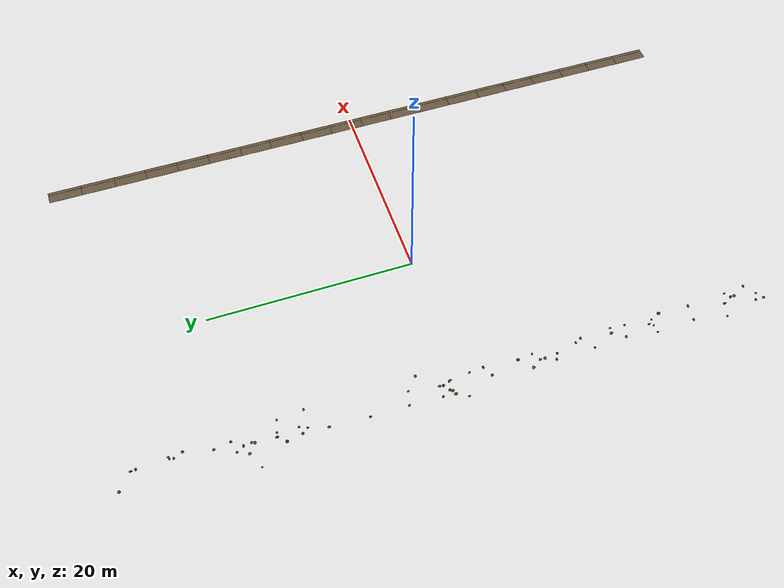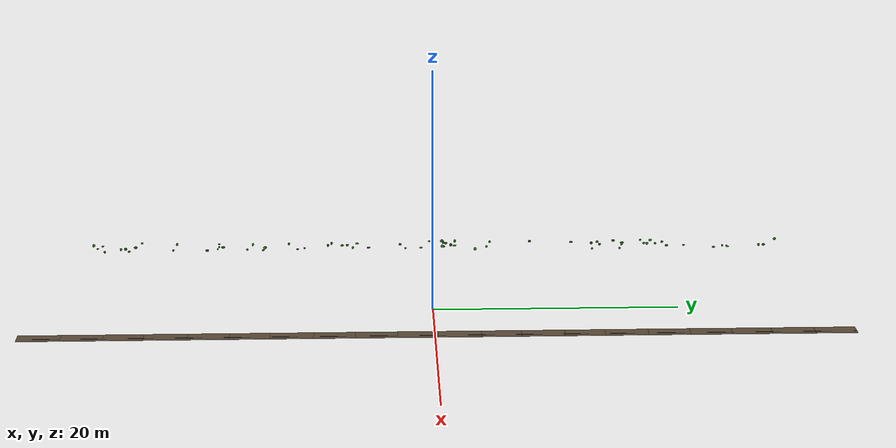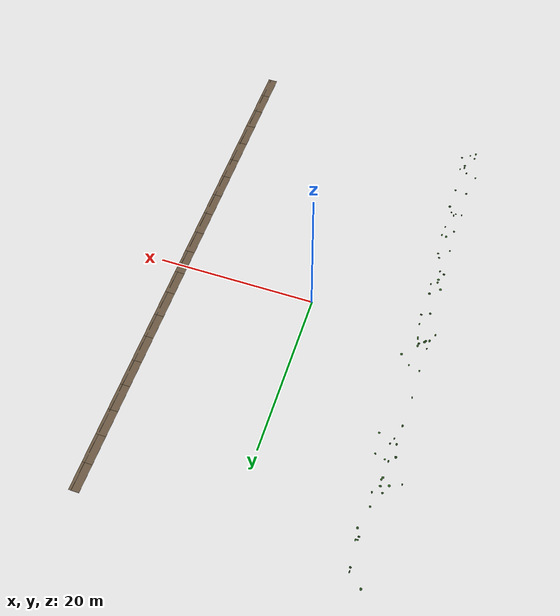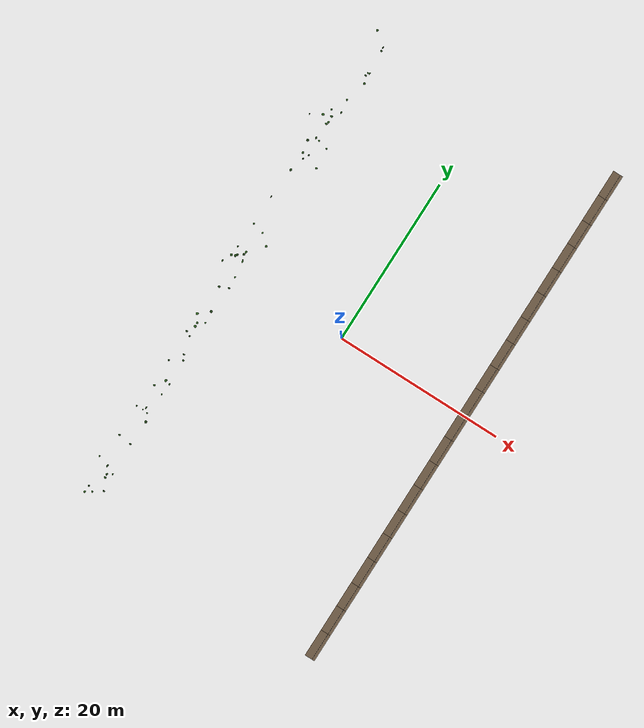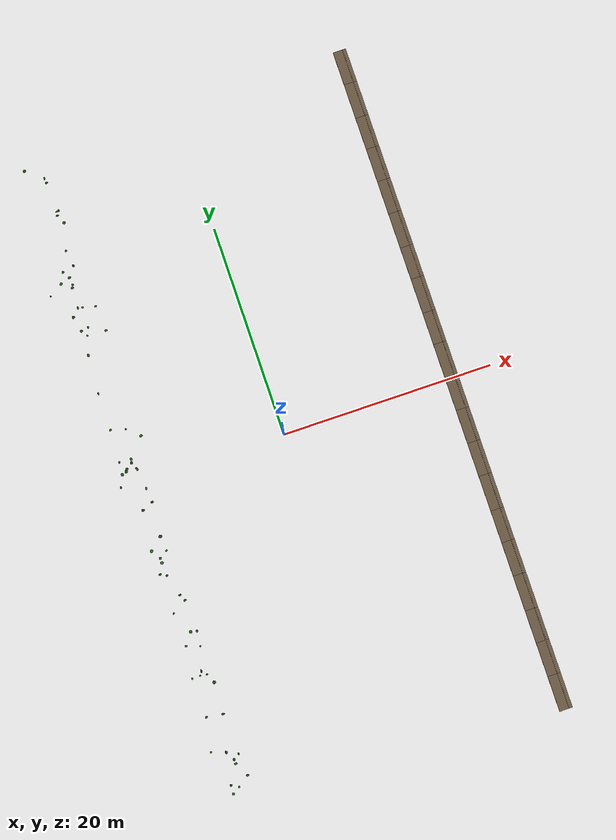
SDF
<sdf version="1.9">
 <world name="orchard_10x41">
  <model name="understory_r9">
   <static>true</static>
   <link name="link">
    <visual name="soil_1">
     <pose>15.750 -29.450 3.890 0.0001 0.0000 0.0000</pose>
     <geometry><box><size>1.2000 3.2240 0.0300</size></box></geometry>
     <material>
      <ambient>0.400 0.330 0.250 1</ambient>
      <diffuse>0.440 0.363 0.275 1</diffuse>
      <specular>0.120 0.099 0.075 1</specular>
     </material>
     <plugin filename="gz-sim-label-system" name="gz::sim::systems::Label"><label>66</label></plugin>
    </visual>
    <visual name="soil_2">
     <pose>15.750 -26.350 3.890 0.0004 0.0000 0.0000</pose>
     <geometry><box><size>1.2000 3.2240 0.0300</size></box></geometry>
     <material>
      <ambient>0.400 0.330 0.250 1</ambient>
      <diffuse>0.440 0.363 0.275 1</diffuse>
      <specular>0.120 0.099 0.075 1</specular>
     </material>
     <plugin filename="gz-sim-label-system" name="gz::sim::systems::Label"><label>66</label></plugin>
    </visual>
    <visual name="soil_3">
     <pose>15.750 -23.250 3.891 0.0003 0.0000 0.0000</pose>
     <geometry><box><size>1.2000 3.2240 0.0300</size></box></geometry>
     <material>
      <ambient>0.400 0.330 0.250 1</ambient>
      <diffuse>0.440 0.363 0.275 1</diffuse>
      <specular>0.120 0.099 0.075 1</specular>
     </material>
     <plugin filename="gz-sim-label-system" name="gz::sim::systems::Label"><label>66</label></plugin>
    </visual>
    <visual name="soil_4">
     <pose>15.750 -20.150 3.892 0.0001 0.0000 0.0000</pose>
     <geometry><box><size>1.2000 3.2240 0.0300</size></box></geometry>
     <material>
      <ambient>0.400 0.330 0.250 1</ambient>
      <diffuse>0.440 0.363 0.275 1</diffuse>
      <specular>0.120 0.099 0.075 1</specular>
     </material>
     <plugin filename="gz-sim-label-system" name="gz::sim::systems::Label"><label>66</label></plugin>
    </visual>
    <visual name="soil_5">
     <pose>15.750 -17.050 3.892 -0.0000 0.0000 0.0000</pose>
     <geometry><box><size>1.2000 3.2240 0.0300</size></box></geometry>
     <material>
      <ambient>0.400 0.330 0.250 1</ambient>
      <diffuse>0.440 0.363 0.275 1</diffuse>
      <specular>0.120 0.099 0.075 1</specular>
     </material>
     <plugin filename="gz-sim-label-system" name="gz::sim::systems::Label"><label>66</label></plugin>
    </visual>
    <visual name="soil_6">
     <pose>15.750 -13.950 3.892 0.0001 0.0000 0.0000</pose>
     <geometry><box><size>1.2000 3.2240 0.0300</size></box></geometry>
     <material>
      <ambient>0.400 0.330 0.250 1</ambient>
      <diffuse>0.440 0.363 0.275 1</diffuse>
      <specular>0.120 0.099 0.075 1</specular>
     </material>
     <plugin filename="gz-sim-label-system" name="gz::sim::systems::Label"><label>66</label></plugin>
    </visual>
    <visual name="soil_7">
     <pose>15.750 -10.850 3.893 0.0001 0.0000 0.0000</pose>
     <geometry><box><size>1.2000 3.2240 0.0300</size></box></geometry>
     <material>
      <ambient>0.400 0.330 0.250 1</ambient>
      <diffuse>0.440 0.363 0.275 1</diffuse>
      <specular>0.120 0.099 0.075 1</specular>
     </material>
     <plugin filename="gz-sim-label-system" name="gz::sim::systems::Label"><label>66</label></plugin>
    </visual>
    <visual name="soil_8">
     <pose>15.750 -7.750 3.893 -0.0000 0.0000 0.0000</pose>
     <geometry><box><size>1.2000 3.2240 0.0300</size></box></geometry>
     <material>
      <ambient>0.400 0.330 0.250 1</ambient>
      <diffuse>0.440 0.363 0.275 1</diffuse>
      <specular>0.120 0.099 0.075 1</specular>
     </material>
     <plugin filename="gz-sim-label-system" name="gz::sim::systems::Label"><label>66</label></plugin>
    </visual>
    <visual name="soil_9">
     <pose>15.750 -4.650 3.892 -0.0003 0.0000 0.0000</pose>
     <geometry><box><size>1.2000 3.2240 0.0300</size></box></geometry>
     <material>
      <ambient>0.400 0.330 0.250 1</ambient>
      <diffuse>0.440 0.363 0.275 1</diffuse>
      <specular>0.120 0.099 0.075 1</specular>
     </material>
     <plugin filename="gz-sim-label-system" name="gz::sim::systems::Label"><label>66</label></plugin>
    </visual>
    <visual name="soil_10">
     <pose>15.750 -1.550 3.891 -0.0003 0.0000 0.0000</pose>
     <geometry><box><size>1.2000 3.2240 0.0300</size></box></geometry>
     <material>
      <ambient>0.400 0.330 0.250 1</ambient>
      <diffuse>0.440 0.363 0.275 1</diffuse>
      <specular>0.120 0.099 0.075 1</specular>
     </material>
     <plugin filename="gz-sim-label-system" name="gz::sim::systems::Label"><label>66</label></plugin>
    </visual>
    <visual name="soil_11">
     <pose>15.750 1.550 3.891 0.0000 0.0000 0.0000</pose>
     <geometry><box><size>1.2000 3.2240 0.0300</size></box></geometry>
     <material>
      <ambient>0.400 0.330 0.250 1</ambient>
      <diffuse>0.440 0.363 0.275 1</diffuse>
      <specular>0.120 0.099 0.075 1</specular>
     </material>
     <plugin filename="gz-sim-label-system" name="gz::sim::systems::Label"><label>66</label></plugin>
    </visual>
    <visual name="soil_12">
     <pose>15.750 4.650 3.891 0.0002 0.0000 0.0000</pose>
     <geometry><box><size>1.2000 3.2240 0.0300</size></box></geometry>
     <material>
      <ambient>0.400 0.330 0.250 1</ambient>
      <diffuse>0.440 0.363 0.275 1</diffuse>
      <specular>0.120 0.099 0.075 1</specular>
     </material>
     <plugin filename="gz-sim-label-system" name="gz::sim::systems::Label"><label>66</label></plugin>
    </visual>
    <visual name="soil_13">
     <pose>15.750 7.750 3.892 0.0003 0.0000 0.0000</pose>
     <geometry><box><size>1.2000 3.2240 0.0300</size></box></geometry>
     <material>
      <ambient>0.400 0.330 0.250 1</ambient>
      <diffuse>0.440 0.363 0.275 1</diffuse>
      <specular>0.120 0.099 0.075 1</specular>
     </material>
     <plugin filename="gz-sim-label-system" name="gz::sim::systems::Label"><label>66</label></plugin>
    </visual>
    <visual name="soil_14">
     <pose>15.750 10.850 3.893 0.0006 0.0000 0.0000</pose>
     <geometry><box><size>1.2000 3.2240 0.0300</size></box></geometry>
     <material>
      <ambient>0.400 0.330 0.250 1</ambient>
      <diffuse>0.440 0.363 0.275 1</diffuse>
      <specular>0.120 0.099 0.075 1</specular>
     </material>
     <plugin filename="gz-sim-label-system" name="gz::sim::systems::Label"><label>66</label></plugin>
    </visual>
    <visual name="soil_15">
     <pose>15.750 13.950 3.895 0.0006 0.0000 0.0000</pose>
     <geometry><box><size>1.2000 3.2240 0.0300</size></box></geometry>
     <material>
      <ambient>0.400 0.330 0.250 1</ambient>
      <diffuse>0.440 0.363 0.275 1</diffuse>
      <specular>0.120 0.099 0.075 1</specular>
     </material>
     <plugin filename="gz-sim-label-system" name="gz::sim::systems::Label"><label>66</label></plugin>
    </visual>
    <visual name="soil_16">
     <pose>15.750 17.050 3.895 -0.0005 0.0000 0.0000</pose>
     <geometry><box><size>1.2000 3.2240 0.0300</size></box></geometry>
     <material>
      <ambient>0.400 0.330 0.250 1</ambient>
      <diffuse>0.440 0.363 0.275 1</diffuse>
      <specular>0.120 0.099 0.075 1</specular>
     </material>
     <plugin filename="gz-sim-label-system" name="gz::sim::systems::Label"><label>66</label></plugin>
    </visual>
    <visual name="soil_17">
     <pose>15.750 20.150 3.894 -0.0001 0.0000 0.0000</pose>
     <geometry><box><size>1.2000 3.2240 0.0300</size></box></geometry>
     <material>
      <ambient>0.400 0.330 0.250 1</ambient>
      <diffuse>0.440 0.363 0.275 1</diffuse>
      <specular>0.120 0.099 0.075 1</specular>
     </material>
     <plugin filename="gz-sim-label-system" name="gz::sim::systems::Label"><label>66</label></plugin>
    </visual>
    <visual name="soil_18">
     <pose>15.750 23.250 3.894 0.0002 0.0000 0.0000</pose>
     <geometry><box><size>1.2000 3.2240 0.0300</size></box></geometry>
     <material>
      <ambient>0.400 0.330 0.250 1</ambient>
      <diffuse>0.440 0.363 0.275 1</diffuse>
      <specular>0.120 0.099 0.075 1</specular>
     </material>
     <plugin filename="gz-sim-label-system" name="gz::sim::systems::Label"><label>66</label></plugin>
    </visual>
    <visual name="soil_19">
     <pose>15.750 26.350 3.895 -0.0000 0.0000 0.0000</pose>
     <geometry><box><size>1.2000 3.2240 0.0300</size></box></geometry>
     <material>
      <ambient>0.400 0.330 0.250 1</ambient>
      <diffuse>0.440 0.363 0.275 1</diffuse>
      <specular>0.120 0.099 0.075 1</specular>
     </material>
     <plugin filename="gz-sim-label-system" name="gz::sim::systems::Label"><label>66</label></plugin>
    </visual>
    <visual name="soil_20">
     <pose>15.750 29.450 3.894 -0.0005 0.0000 0.0000</pose>
     <geometry><box><size>1.2000 3.2240 0.0300</size></box></geometry>
     <material>
      <ambient>0.400 0.330 0.250 1</ambient>
      <diffuse>0.440 0.363 0.275 1</diffuse>
      <specular>0.120 0.099 0.075 1</specular>
     </material>
     <plugin filename="gz-sim-label-system" name="gz::sim::systems::Label"><label>66</label></plugin>
    </visual>
    <visual name="drip_21">
     <pose>16.030 -29.450 3.920 1.5709 0.0000 0.0000</pose>
     <geometry><cylinder><radius>0.0110</radius><length>3.1620</length></cylinder></geometry>
     <material>
      <ambient>0.100 0.100 0.110 1</ambient>
      <diffuse>0.110 0.110 0.121 1</diffuse>
      <specular>0.030 0.030 0.033 1</specular>
     </material>
     <plugin filename="gz-sim-label-system" name="gz::sim::systems::Label"><label>67</label></plugin>
    </visual>
    <visual name="drip_22">
     <pose>16.030 -26.350 3.920 1.5712 0.0000 0.0000</pose>
     <geometry><cylinder><radius>0.0110</radius><length>3.1620</length></cylinder></geometry>
     <material>
      <ambient>0.100 0.100 0.110 1</ambient>
      <diffuse>0.110 0.110 0.121 1</diffuse>
      <specular>0.030 0.030 0.033 1</specular>
     </material>
     <plugin filename="gz-sim-label-system" name="gz::sim::systems::Label"><label>67</label></plugin>
    </visual>
    <visual name="drip_23">
     <pose>16.030 -23.250 3.921 1.5711 0.0000 0.0000</pose>
     <geometry><cylinder><radius>0.0110</radius><length>3.1620</length></cylinder></geometry>
     <material>
      <ambient>0.100 0.100 0.110 1</ambient>
      <diffuse>0.110 0.110 0.121 1</diffuse>
      <specular>0.030 0.030 0.033 1</specular>
     </material>
     <plugin filename="gz-sim-label-system" name="gz::sim::systems::Label"><label>67</label></plugin>
    </visual>
    <visual name="drip_24">
     <pose>16.030 -20.150 3.922 1.5709 0.0000 0.0000</pose>
     <geometry><cylinder><radius>0.0110</radius><length>3.1620</length></cylinder></geometry>
     <material>
      <ambient>0.100 0.100 0.110 1</ambient>
      <diffuse>0.110 0.110 0.121 1</diffuse>
      <specular>0.030 0.030 0.033 1</specular>
     </material>
     <plugin filename="gz-sim-label-system" name="gz::sim::systems::Label"><label>67</label></plugin>
    </visual>
    <visual name="drip_25">
     <pose>16.030 -17.050 3.922 1.5708 0.0000 0.0000</pose>
     <geometry><cylinder><radius>0.0110</radius><length>3.1620</length></cylinder></geometry>
     <material>
      <ambient>0.100 0.100 0.110 1</ambient>
      <diffuse>0.110 0.110 0.121 1</diffuse>
      <specular>0.030 0.030 0.033 1</specular>
     </material>
     <plugin filename="gz-sim-label-system" name="gz::sim::systems::Label"><label>67</label></plugin>
    </visual>
    <visual name="drip_26">
     <pose>16.030 -13.950 3.922 1.5709 0.0000 0.0000</pose>
     <geometry><cylinder><radius>0.0110</radius><length>3.1620</length></cylinder></geometry>
     <material>
      <ambient>0.100 0.100 0.110 1</ambient>
      <diffuse>0.110 0.110 0.121 1</diffuse>
      <specular>0.030 0.030 0.033 1</specular>
     </material>
     <plugin filename="gz-sim-label-system" name="gz::sim::systems::Label"><label>67</label></plugin>
    </visual>
    <visual name="drip_27">
     <pose>16.030 -10.850 3.923 1.5709 0.0000 0.0000</pose>
     <geometry><cylinder><radius>0.0110</radius><length>3.1620</length></cylinder></geometry>
     <material>
      <ambient>0.100 0.100 0.110 1</ambient>
      <diffuse>0.110 0.110 0.121 1</diffuse>
      <specular>0.030 0.030 0.033 1</specular>
     </material>
     <plugin filename="gz-sim-label-system" name="gz::sim::systems::Label"><label>67</label></plugin>
    </visual>
    <visual name="drip_28">
     <pose>16.030 -7.750 3.923 1.5708 0.0000 0.0000</pose>
     <geometry><cylinder><radius>0.0110</radius><length>3.1620</length></cylinder></geometry>
     <material>
      <ambient>0.100 0.100 0.110 1</ambient>
      <diffuse>0.110 0.110 0.121 1</diffuse>
      <specular>0.030 0.030 0.033 1</specular>
     </material>
     <plugin filename="gz-sim-label-system" name="gz::sim::systems::Label"><label>67</label></plugin>
    </visual>
    <visual name="drip_29">
     <pose>16.030 -4.650 3.922 1.5705 0.0000 0.0000</pose>
     <geometry><cylinder><radius>0.0110</radius><length>3.1620</length></cylinder></geometry>
     <material>
      <ambient>0.100 0.100 0.110 1</ambient>
      <diffuse>0.110 0.110 0.121 1</diffuse>
      <specular>0.030 0.030 0.033 1</specular>
     </material>
     <plugin filename="gz-sim-label-system" name="gz::sim::systems::Label"><label>67</label></plugin>
    </visual>
    <visual name="drip_30">
     <pose>16.030 -1.550 3.921 1.5705 0.0000 0.0000</pose>
     <geometry><cylinder><radius>0.0110</radius><length>3.1620</length></cylinder></geometry>
     <material>
      <ambient>0.100 0.100 0.110 1</ambient>
      <diffuse>0.110 0.110 0.121 1</diffuse>
      <specular>0.030 0.030 0.033 1</specular>
     </material>
     <plugin filename="gz-sim-label-system" name="gz::sim::systems::Label"><label>67</label></plugin>
    </visual>
    <visual name="drip_31">
     <pose>16.030 1.550 3.921 1.5708 0.0000 0.0000</pose>
     <geometry><cylinder><radius>0.0110</radius><length>3.1620</length></cylinder></geometry>
     <material>
      <ambient>0.100 0.100 0.110 1</ambient>
      <diffuse>0.110 0.110 0.121 1</diffuse>
      <specular>0.030 0.030 0.033 1</specular>
     </material>
     <plugin filename="gz-sim-label-system" name="gz::sim::systems::Label"><label>67</label></plugin>
    </visual>
    <visual name="drip_32">
     <pose>16.030 4.650 3.921 1.5710 0.0000 0.0000</pose>
     <geometry><cylinder><radius>0.0110</radius><length>3.1620</length></cylinder></geometry>
     <material>
      <ambient>0.100 0.100 0.110 1</ambient>
      <diffuse>0.110 0.110 0.121 1</diffuse>
      <specular>0.030 0.030 0.033 1</specular>
     </material>
     <plugin filename="gz-sim-label-system" name="gz::sim::systems::Label"><label>67</label></plugin>
    </visual>
    <visual name="drip_33">
     <pose>16.030 7.750 3.922 1.5711 0.0000 0.0000</pose>
     <geometry><cylinder><radius>0.0110</radius><length>3.1620</length></cylinder></geometry>
     <material>
      <ambient>0.100 0.100 0.110 1</ambient>
      <diffuse>0.110 0.110 0.121 1</diffuse>
      <specular>0.030 0.030 0.033 1</specular>
     </material>
     <plugin filename="gz-sim-label-system" name="gz::sim::systems::Label"><label>67</label></plugin>
    </visual>
    <visual name="drip_34">
     <pose>16.030 10.850 3.923 1.5714 0.0000 0.0000</pose>
     <geometry><cylinder><radius>0.0110</radius><length>3.1620</length></cylinder></geometry>
     <material>
      <ambient>0.100 0.100 0.110 1</ambient>
      <diffuse>0.110 0.110 0.121 1</diffuse>
      <specular>0.030 0.030 0.033 1</specular>
     </material>
     <plugin filename="gz-sim-label-system" name="gz::sim::systems::Label"><label>67</label></plugin>
    </visual>
    <visual name="drip_35">
     <pose>16.030 13.950 3.925 1.5714 0.0000 0.0000</pose>
     <geometry><cylinder><radius>0.0110</radius><length>3.1620</length></cylinder></geometry>
     <material>
      <ambient>0.100 0.100 0.110 1</ambient>
      <diffuse>0.110 0.110 0.121 1</diffuse>
      <specular>0.030 0.030 0.033 1</specular>
     </material>
     <plugin filename="gz-sim-label-system" name="gz::sim::systems::Label"><label>67</label></plugin>
    </visual>
    <visual name="drip_36">
     <pose>16.030 17.050 3.925 1.5703 0.0000 0.0000</pose>
     <geometry><cylinder><radius>0.0110</radius><length>3.1620</length></cylinder></geometry>
     <material>
      <ambient>0.100 0.100 0.110 1</ambient>
      <diffuse>0.110 0.110 0.121 1</diffuse>
      <specular>0.030 0.030 0.033 1</specular>
     </material>
     <plugin filename="gz-sim-label-system" name="gz::sim::systems::Label"><label>67</label></plugin>
    </visual>
    <visual name="drip_37">
     <pose>16.030 20.150 3.924 1.5707 0.0000 0.0000</pose>
     <geometry><cylinder><radius>0.0110</radius><length>3.1620</length></cylinder></geometry>
     <material>
      <ambient>0.100 0.100 0.110 1</ambient>
      <diffuse>0.110 0.110 0.121 1</diffuse>
      <specular>0.030 0.030 0.033 1</specular>
     </material>
     <plugin filename="gz-sim-label-system" name="gz::sim::systems::Label"><label>67</label></plugin>
    </visual>
    <visual name="drip_38">
     <pose>16.030 23.250 3.924 1.5710 0.0000 0.0000</pose>
     <geometry><cylinder><radius>0.0110</radius><length>3.1620</length></cylinder></geometry>
     <material>
      <ambient>0.100 0.100 0.110 1</ambient>
      <diffuse>0.110 0.110 0.121 1</diffuse>
      <specular>0.030 0.030 0.033 1</specular>
     </material>
     <plugin filename="gz-sim-label-system" name="gz::sim::systems::Label"><label>67</label></plugin>
    </visual>
    <visual name="drip_39">
     <pose>16.030 26.350 3.925 1.5708 0.0000 0.0000</pose>
     <geometry><cylinder><radius>0.0110</radius><length>3.1620</length></cylinder></geometry>
     <material>
      <ambient>0.100 0.100 0.110 1</ambient>
      <diffuse>0.110 0.110 0.121 1</diffuse>
      <specular>0.030 0.030 0.033 1</specular>
     </material>
     <plugin filename="gz-sim-label-system" name="gz::sim::systems::Label"><label>67</label></plugin>
    </visual>
    <visual name="drip_40">
     <pose>16.030 29.450 3.924 1.5703 0.0000 0.0000</pose>
     <geometry><cylinder><radius>0.0110</radius><length>3.1620</length></cylinder></geometry>
     <material>
      <ambient>0.100 0.100 0.110 1</ambient>
      <diffuse>0.110 0.110 0.121 1</diffuse>
      <specular>0.030 0.030 0.033 1</specular>
     </material>
     <plugin filename="gz-sim-label-system" name="gz::sim::systems::Label"><label>67</label></plugin>
    </visual>
   </link>
  </model>
  <model name="weeds_a0">
   <static>true</static>
   <link name="link">
    <visual name="weed_1">
     <pose>-15.346 -25.042 0.769 0.0000 0.0000 0.0000</pose>
     <geometry><ellipsoid><radii>0.0960 0.0942 0.0920</radii></ellipsoid></geometry>
     <material>
      <ambient>0.199 0.399 0.140 1</ambient>
      <diffuse>0.219 0.439 0.154 1</diffuse>
      <specular>0.060 0.120 0.042 1</specular>
     </material>
     <plugin filename="gz-sim-label-system" name="gz::sim::systems::Label"><label>11</label></plugin>
    </visual>
    <visual name="weed_2">
     <pose>-14.595 -12.184 0.841 0.0000 0.0000 0.0000</pose>
     <geometry><ellipsoid><radii>0.1000 0.0940 0.1221</radii></ellipsoid></geometry>
     <material>
      <ambient>0.161 0.322 0.113 1</ambient>
      <diffuse>0.177 0.354 0.124 1</diffuse>
      <specular>0.048 0.096 0.034 1</specular>
     </material>
     <plugin filename="gz-sim-label-system" name="gz::sim::systems::Label"><label>11</label></plugin>
    </visual>
    <visual name="weed_3">
     <pose>-14.179 -7.532 0.797 0.0000 0.0000 0.0000</pose>
     <geometry><ellipsoid><radii>0.1523 0.1374 0.0792</radii></ellipsoid></geometry>
     <material>
      <ambient>0.195 0.390 0.137 1</ambient>
      <diffuse>0.215 0.429 0.150 1</diffuse>
      <specular>0.059 0.117 0.041 1</specular>
     </material>
     <plugin filename="gz-sim-label-system" name="gz::sim::systems::Label"><label>11</label></plugin>
    </visual>
    <visual name="weed_4">
     <pose>-14.141 16.965 0.815 0.0000 0.0000 0.0000</pose>
     <geometry><ellipsoid><radii>0.0945 0.1583 0.1104</radii></ellipsoid></geometry>
     <material>
      <ambient>0.128 0.256 0.090 1</ambient>
      <diffuse>0.141 0.282 0.099 1</diffuse>
      <specular>0.038 0.077 0.027 1</specular>
     </material>
     <plugin filename="gz-sim-label-system" name="gz::sim::systems::Label"><label>11</label></plugin>
    </visual>
    <visual name="weed_5">
     <pose>-16.209 18.835 0.360 0.0000 0.0000 0.0000</pose>
     <geometry><ellipsoid><radii>0.0726 0.1010 0.0837</radii></ellipsoid></geometry>
     <material>
      <ambient>0.131 0.263 0.092 1</ambient>
      <diffuse>0.145 0.289 0.101 1</diffuse>
      <specular>0.039 0.079 0.028 1</specular>
     </material>
     <plugin filename="gz-sim-label-system" name="gz::sim::systems::Label"><label>11</label></plugin>
    </visual>
    <visual name="weed_6">
     <pose>-13.044 -25.954 0.796 0.0000 0.0000 0.0000</pose>
     <geometry><ellipsoid><radii>0.0721 0.1227 0.0797</radii></ellipsoid></geometry>
     <material>
      <ambient>0.189 0.378 0.132 1</ambient>
      <diffuse>0.208 0.416 0.146 1</diffuse>
      <specular>0.057 0.114 0.040 1</specular>
     </material>
     <plugin filename="gz-sim-label-system" name="gz::sim::systems::Label"><label>11</label></plugin>
    </visual>
    <visual name="weed_7">
     <pose>-14.177 -7.082 0.818 0.0000 0.0000 0.0000</pose>
     <geometry><ellipsoid><radii>0.1282 0.1291 0.0997</radii></ellipsoid></geometry>
     <material>
      <ambient>0.176 0.352 0.123 1</ambient>
      <diffuse>0.193 0.387 0.135 1</diffuse>
      <specular>0.053 0.105 0.037 1</specular>
     </material>
     <plugin filename="gz-sim-label-system" name="gz::sim::systems::Label"><label>11</label></plugin>
    </visual>
    <visual name="weed_8">
     <pose>-13.245 -15.739 0.808 0.0000 0.0000 0.0000</pose>
     <geometry><ellipsoid><radii>0.0773 0.0946 0.0873</radii></ellipsoid></geometry>
     <material>
      <ambient>0.205 0.410 0.144 1</ambient>
      <diffuse>0.226 0.451 0.158 1</diffuse>
      <specular>0.062 0.123 0.043 1</specular>
     </material>
     <plugin filename="gz-sim-label-system" name="gz::sim::systems::Label"><label>11</label></plugin>
    </visual>
    <visual name="weed_9">
     <pose>-14.304 -2.467 0.802 0.0000 0.0000 0.0000</pose>
     <geometry><ellipsoid><radii>0.1500 0.1200 0.0855</radii></ellipsoid></geometry>
     <material>
      <ambient>0.129 0.259 0.091 1</ambient>
      <diffuse>0.142 0.285 0.100 1</diffuse>
      <specular>0.039 0.078 0.027 1</specular>
     </material>
     <plugin filename="gz-sim-label-system" name="gz::sim::systems::Label"><label>11</label></plugin>
    </visual>
    <visual name="weed_10">
     <pose>-14.818 8.900 0.816 0.0000 0.0000 0.0000</pose>
     <geometry><ellipsoid><radii>0.0710 0.1367 0.1022</radii></ellipsoid></geometry>
     <material>
      <ambient>0.117 0.234 0.082 1</ambient>
      <diffuse>0.129 0.258 0.090 1</diffuse>
      <specular>0.035 0.070 0.025 1</specular>
     </material>
     <plugin filename="gz-sim-label-system" name="gz::sim::systems::Label"><label>11</label></plugin>
    </visual>
    <visual name="weed_11">
     <pose>-13.622 1.218 0.830 0.0000 0.0000 0.0000</pose>
     <geometry><ellipsoid><radii>0.0907 0.1589 0.1161</radii></ellipsoid></geometry>
     <material>
      <ambient>0.201 0.401 0.141 1</ambient>
      <diffuse>0.221 0.442 0.155 1</diffuse>
      <specular>0.060 0.120 0.042 1</specular>
     </material>
     <plugin filename="gz-sim-label-system" name="gz::sim::systems::Label"><label>11</label></plugin>
    </visual>
    <visual name="weed_12">
     <pose>-14.462 -15.323 0.849 0.0000 0.0000 0.0000</pose>
     <geometry><ellipsoid><radii>0.1253 0.0983 0.1284</radii></ellipsoid></geometry>
     <material>
      <ambient>0.193 0.386 0.135 1</ambient>
      <diffuse>0.213 0.425 0.149 1</diffuse>
      <specular>0.058 0.116 0.041 1</specular>
     </material>
     <plugin filename="gz-sim-label-system" name="gz::sim::systems::Label"><label>11</label></plugin>
    </visual>
    <visual name="weed_13">
     <pose>-13.669 -14.229 0.836 0.0000 0.0000 0.0000</pose>
     <geometry><ellipsoid><radii>0.1439 0.1556 0.1156</radii></ellipsoid></geometry>
     <material>
      <ambient>0.179 0.357 0.125 1</ambient>
      <diffuse>0.196 0.393 0.138 1</diffuse>
      <specular>0.054 0.107 0.038 1</specular>
     </material>
     <plugin filename="gz-sim-label-system" name="gz::sim::systems::Label"><label>11</label></plugin>
    </visual>
    <visual name="weed_14">
     <pose>-14.122 14.268 0.837 0.0000 0.0000 0.0000</pose>
     <geometry><ellipsoid><radii>0.0754 0.1102 0.1290</radii></ellipsoid></geometry>
     <material>
      <ambient>0.121 0.242 0.085 1</ambient>
      <diffuse>0.133 0.266 0.093 1</diffuse>
      <specular>0.036 0.073 0.025 1</specular>
     </material>
     <plugin filename="gz-sim-label-system" name="gz::sim::systems::Label"><label>11</label></plugin>
    </visual>
    <visual name="weed_15">
     <pose>-13.940 1.951 0.837 0.0000 0.0000 0.0000</pose>
     <geometry><ellipsoid><radii>0.1321 0.1328 0.1235</radii></ellipsoid></geometry>
     <material>
      <ambient>0.125 0.249 0.087 1</ambient>
      <diffuse>0.137 0.274 0.096 1</diffuse>
      <specular>0.037 0.075 0.026 1</specular>
     </material>
     <plugin filename="gz-sim-label-system" name="gz::sim::systems::Label"><label>11</label></plugin>
    </visual>
    <visual name="weed_16">
     <pose>-14.734 -6.226 0.774 0.0000 0.0000 0.0000</pose>
     <geometry><ellipsoid><radii>0.1594 0.1507 0.0562</radii></ellipsoid></geometry>
     <material>
      <ambient>0.197 0.393 0.138 1</ambient>
      <diffuse>0.216 0.433 0.151 1</diffuse>
      <specular>0.059 0.118 0.041 1</specular>
     </material>
     <plugin filename="gz-sim-label-system" name="gz::sim::systems::Label"><label>11</label></plugin>
    </visual>
    <visual name="weed_17">
     <pose>-13.120 -14.361 0.797 0.0000 0.0000 0.0000</pose>
     <geometry><ellipsoid><radii>0.0999 0.1198 0.0770</radii></ellipsoid></geometry>
     <material>
      <ambient>0.177 0.354 0.124 1</ambient>
      <diffuse>0.195 0.389 0.136 1</diffuse>
      <specular>0.053 0.106 0.037 1</specular>
     </material>
     <plugin filename="gz-sim-label-system" name="gz::sim::systems::Label"><label>11</label></plugin>
    </visual>
    <visual name="weed_18">
     <pose>-13.929 19.136 0.806 0.0000 0.0000 0.0000</pose>
     <geometry><ellipsoid><radii>0.1119 0.1254 0.1040</radii></ellipsoid></geometry>
     <material>
      <ambient>0.199 0.398 0.139 1</ambient>
      <diffuse>0.219 0.438 0.153 1</diffuse>
      <specular>0.060 0.119 0.042 1</specular>
     </material>
     <plugin filename="gz-sim-label-system" name="gz::sim::systems::Label"><label>11</label></plugin>
    </visual>
    <visual name="weed_19">
     <pose>-14.412 20.507 0.782 0.0000 0.0000 0.0000</pose>
     <geometry><ellipsoid><radii>0.1160 0.1214 0.0803</radii></ellipsoid></geometry>
     <material>
      <ambient>0.161 0.323 0.113 1</ambient>
      <diffuse>0.177 0.355 0.124 1</diffuse>
      <specular>0.048 0.097 0.034 1</specular>
     </material>
     <plugin filename="gz-sim-label-system" name="gz::sim::systems::Label"><label>11</label></plugin>
    </visual>
    <visual name="weed_20">
     <pose>-14.831 5.392 0.794 0.0000 0.0000 0.0000</pose>
     <geometry><ellipsoid><radii>0.1141 0.1113 0.0822</radii></ellipsoid></geometry>
     <material>
      <ambient>0.177 0.353 0.124 1</ambient>
      <diffuse>0.194 0.389 0.136 1</diffuse>
      <specular>0.053 0.106 0.037 1</specular>
     </material>
     <plugin filename="gz-sim-label-system" name="gz::sim::systems::Label"><label>11</label></plugin>
    </visual>
    <visual name="weed_21">
     <pose>-13.264 -11.378 0.796 0.0000 0.0000 0.0000</pose>
     <geometry><ellipsoid><radii>0.1373 0.1023 0.0771</radii></ellipsoid></geometry>
     <material>
      <ambient>0.153 0.306 0.107 1</ambient>
      <diffuse>0.168 0.336 0.118 1</diffuse>
      <specular>0.046 0.092 0.032 1</specular>
     </material>
     <plugin filename="gz-sim-label-system" name="gz::sim::systems::Label"><label>11</label></plugin>
    </visual>
    <visual name="weed_22">
     <pose>-14.795 16.263 0.807 0.0000 0.0000 0.0000</pose>
     <geometry><ellipsoid><radii>0.1460 0.1500 0.1013</radii></ellipsoid></geometry>
     <material>
      <ambient>0.129 0.258 0.090 1</ambient>
      <diffuse>0.142 0.284 0.099 1</diffuse>
      <specular>0.039 0.077 0.027 1</specular>
     </material>
     <plugin filename="gz-sim-label-system" name="gz::sim::systems::Label"><label>11</label></plugin>
    </visual>
    <visual name="weed_23">
     <pose>-14.500 14.821 0.809 0.0000 0.0000 0.0000</pose>
     <geometry><ellipsoid><radii>0.1187 0.1351 0.1012</radii></ellipsoid></geometry>
     <material>
      <ambient>0.159 0.318 0.111 1</ambient>
      <diffuse>0.175 0.349 0.122 1</diffuse>
      <specular>0.048 0.095 0.033 1</specular>
     </material>
     <plugin filename="gz-sim-label-system" name="gz::sim::systems::Label"><label>11</label></plugin>
    </visual>
    <visual name="weed_24">
     <pose>-15.566 0.138 0.652 0.0000 0.0000 0.0000</pose>
     <geometry><ellipsoid><radii>0.0869 0.1400 0.0650</radii></ellipsoid></geometry>
     <material>
      <ambient>0.149 0.298 0.104 1</ambient>
      <diffuse>0.164 0.328 0.115 1</diffuse>
      <specular>0.045 0.090 0.031 1</specular>
     </material>
     <plugin filename="gz-sim-label-system" name="gz::sim::systems::Label"><label>11</label></plugin>
    </visual>
    <visual name="weed_25">
     <pose>-13.400 -0.675 0.786 0.0000 0.0000 0.0000</pose>
     <geometry><ellipsoid><radii>0.0879 0.1270 0.0708</radii></ellipsoid></geometry>
     <material>
      <ambient>0.200 0.400 0.140 1</ambient>
      <diffuse>0.220 0.440 0.154 1</diffuse>
      <specular>0.060 0.120 0.042 1</specular>
     </material>
     <plugin filename="gz-sim-label-system" name="gz::sim::systems::Label"><label>11</label></plugin>
    </visual>
    <visual name="weed_26">
     <pose>-14.569 -28.391 0.783 0.0000 0.0000 0.0000</pose>
     <geometry><ellipsoid><radii>0.1210 0.1099 0.0660</radii></ellipsoid></geometry>
     <material>
      <ambient>0.111 0.223 0.078 1</ambient>
      <diffuse>0.122 0.245 0.086 1</diffuse>
      <specular>0.033 0.067 0.023 1</specular>
     </material>
     <plugin filename="gz-sim-label-system" name="gz::sim::systems::Label"><label>11</label></plugin>
    </visual>
    <visual name="weed_27">
     <pose>-13.480 -18.321 0.796 0.0000 0.0000 0.0000</pose>
     <geometry><ellipsoid><radii>0.0982 0.0738 0.0761</radii></ellipsoid></geometry>
     <material>
      <ambient>0.144 0.288 0.101 1</ambient>
      <diffuse>0.158 0.317 0.111 1</diffuse>
      <specular>0.043 0.086 0.030 1</specular>
     </material>
     <plugin filename="gz-sim-label-system" name="gz::sim::systems::Label"><label>11</label></plugin>
    </visual>
    <visual name="weed_28">
     <pose>-14.899 19.539 0.789 0.0000 0.0000 0.0000</pose>
     <geometry><ellipsoid><radii>0.1419 0.1325 0.0874</radii></ellipsoid></geometry>
     <material>
      <ambient>0.208 0.415 0.145 1</ambient>
      <diffuse>0.228 0.457 0.160 1</diffuse>
      <specular>0.062 0.125 0.044 1</specular>
     </material>
     <plugin filename="gz-sim-label-system" name="gz::sim::systems::Label"><label>11</label></plugin>
    </visual>
    <visual name="weed_29">
     <pose>-14.599 -29.181 0.845 0.0000 0.0000 0.0000</pose>
     <geometry><ellipsoid><radii>0.1224 0.1218 0.1281</radii></ellipsoid></geometry>
     <material>
      <ambient>0.196 0.392 0.137 1</ambient>
      <diffuse>0.216 0.432 0.151 1</diffuse>
      <specular>0.059 0.118 0.041 1</specular>
     </material>
     <plugin filename="gz-sim-label-system" name="gz::sim::systems::Label"><label>11</label></plugin>
    </visual>
    <visual name="weed_30">
     <pose>-13.203 26.011 0.772 0.0000 0.0000 0.0000</pose>
     <geometry><ellipsoid><radii>0.1178 0.0827 0.0671</radii></ellipsoid></geometry>
     <material>
      <ambient>0.184 0.367 0.128 1</ambient>
      <diffuse>0.202 0.404 0.141 1</diffuse>
      <specular>0.055 0.110 0.039 1</specular>
     </material>
     <plugin filename="gz-sim-label-system" name="gz::sim::systems::Label"><label>11</label></plugin>
    </visual>
    <visual name="weed_31">
     <pose>-13.271 25.651 0.779 0.0000 0.0000 0.0000</pose>
     <geometry><ellipsoid><radii>0.1358 0.0890 0.0751</radii></ellipsoid></geometry>
     <material>
      <ambient>0.122 0.245 0.086 1</ambient>
      <diffuse>0.135 0.269 0.094 1</diffuse>
      <specular>0.037 0.073 0.026 1</specular>
     </material>
     <plugin filename="gz-sim-label-system" name="gz::sim::systems::Label"><label>11</label></plugin>
    </visual>
    <visual name="weed_32">
     <pose>-13.544 22.302 0.762 0.0000 0.0000 0.0000</pose>
     <geometry><ellipsoid><radii>0.1149 0.1163 0.0595</radii></ellipsoid></geometry>
     <material>
      <ambient>0.168 0.335 0.117 1</ambient>
      <diffuse>0.184 0.369 0.129 1</diffuse>
      <specular>0.050 0.101 0.035 1</specular>
     </material>
     <plugin filename="gz-sim-label-system" name="gz::sim::systems::Label"><label>11</label></plugin>
    </visual>
    <visual name="weed_33">
     <pose>-13.715 16.871 0.817 0.0000 0.0000 0.0000</pose>
     <geometry><ellipsoid><radii>0.1135 0.0976 0.1129</radii></ellipsoid></geometry>
     <material>
      <ambient>0.209 0.417 0.146 1</ambient>
      <diffuse>0.230 0.459 0.161 1</diffuse>
      <specular>0.063 0.125 0.044 1</specular>
     </material>
     <plugin filename="gz-sim-label-system" name="gz::sim::systems::Label"><label>11</label></plugin>
    </visual>
    <visual name="weed_34">
     <pose>-13.292 -2.018 0.777 0.0000 0.0000 0.0000</pose>
     <geometry><ellipsoid><radii>0.1572 0.0943 0.0611</radii></ellipsoid></geometry>
     <material>
      <ambient>0.119 0.238 0.083 1</ambient>
      <diffuse>0.131 0.262 0.092 1</diffuse>
      <specular>0.036 0.071 0.025 1</specular>
     </material>
     <plugin filename="gz-sim-label-system" name="gz::sim::systems::Label"><label>11</label></plugin>
    </visual>
    <visual name="weed_35">
     <pose>-12.557 16.581 0.860 0.0000 0.0000 0.0000</pose>
     <geometry><ellipsoid><radii>0.1131 0.0904 0.0940</radii></ellipsoid></geometry>
     <material>
      <ambient>0.201 0.402 0.141 1</ambient>
      <diffuse>0.221 0.442 0.155 1</diffuse>
      <specular>0.060 0.121 0.042 1</specular>
     </material>
     <plugin filename="gz-sim-label-system" name="gz::sim::systems::Label"><label>11</label></plugin>
    </visual>
    <visual name="weed_36">
     <pose>-12.345 14.157 0.925 0.0000 0.0000 0.0000</pose>
     <geometry><ellipsoid><radii>0.1415 0.0966 0.0716</radii></ellipsoid></geometry>
     <material>
      <ambient>0.197 0.395 0.138 1</ambient>
      <diffuse>0.217 0.434 0.152 1</diffuse>
      <specular>0.059 0.118 0.041 1</specular>
     </material>
     <plugin filename="gz-sim-label-system" name="gz::sim::systems::Label"><label>11</label></plugin>
    </visual>
    <visual name="weed_37">
     <pose>-13.561 -5.218 0.782 0.0000 0.0000 0.0000</pose>
     <geometry><ellipsoid><radii>0.1571 0.1498 0.0638</radii></ellipsoid></geometry>
     <material>
      <ambient>0.126 0.252 0.088 1</ambient>
      <diffuse>0.139 0.277 0.097 1</diffuse>
      <specular>0.038 0.076 0.026 1</specular>
     </material>
     <plugin filename="gz-sim-label-system" name="gz::sim::systems::Label"><label>11</label></plugin>
    </visual>
    <visual name="weed_38">
     <pose>-14.872 -18.267 0.779 0.0000 0.0000 0.0000</pose>
     <geometry><ellipsoid><radii>0.0891 0.1003 0.0598</radii></ellipsoid></geometry>
     <material>
      <ambient>0.140 0.280 0.098 1</ambient>
      <diffuse>0.154 0.308 0.108 1</diffuse>
      <specular>0.042 0.084 0.029 1</specular>
     </material>
     <plugin filename="gz-sim-label-system" name="gz::sim::systems::Label"><label>11</label></plugin>
    </visual>
    <visual name="weed_39">
     <pose>-12.894 24.829 0.770 0.0000 0.0000 0.0000</pose>
     <geometry><ellipsoid><radii>0.1274 0.1326 0.0665</radii></ellipsoid></geometry>
     <material>
      <ambient>0.161 0.322 0.113 1</ambient>
      <diffuse>0.177 0.354 0.124 1</diffuse>
      <specular>0.048 0.097 0.034 1</specular>
     </material>
     <plugin filename="gz-sim-label-system" name="gz::sim::systems::Label"><label>11</label></plugin>
    </visual>
    <visual name="weed_40">
     <pose>-13.267 28.843 0.820 0.0000 0.0000 0.0000</pose>
     <geometry><ellipsoid><radii>0.1378 0.0963 0.1138</radii></ellipsoid></geometry>
     <material>
      <ambient>0.138 0.276 0.097 1</ambient>
      <diffuse>0.152 0.304 0.106 1</diffuse>
      <specular>0.041 0.083 0.029 1</specular>
     </material>
     <plugin filename="gz-sim-label-system" name="gz::sim::systems::Label"><label>11</label></plugin>
    </visual>
    <visual name="weed_41">
     <pose>-13.869 2.280 0.795 0.0000 0.0000 0.0000</pose>
     <geometry><ellipsoid><radii>0.1124 0.1580 0.0816</radii></ellipsoid></geometry>
     <material>
      <ambient>0.195 0.390 0.137 1</ambient>
      <diffuse>0.215 0.429 0.150 1</diffuse>
      <specular>0.059 0.117 0.041 1</specular>
     </material>
     <plugin filename="gz-sim-label-system" name="gz::sim::systems::Label"><label>11</label></plugin>
    </visual>
    <visual name="weed_42">
     <pose>-14.654 -8.466 0.844 0.0000 0.0000 0.0000</pose>
     <geometry><ellipsoid><radii>0.1349 0.0968 0.1261</radii></ellipsoid></geometry>
     <material>
      <ambient>0.112 0.225 0.079 1</ambient>
      <diffuse>0.124 0.247 0.087 1</diffuse>
      <specular>0.034 0.067 0.024 1</specular>
     </material>
     <plugin filename="gz-sim-label-system" name="gz::sim::systems::Label"><label>11</label></plugin>
    </visual>
    <visual name="weed_43">
     <pose>-13.551 -26.700 0.832 0.0000 0.0000 0.0000</pose>
     <geometry><ellipsoid><radii>0.1497 0.1049 0.1158</radii></ellipsoid></geometry>
     <material>
      <ambient>0.178 0.356 0.125 1</ambient>
      <diffuse>0.196 0.392 0.137 1</diffuse>
      <specular>0.053 0.107 0.037 1</specular>
     </material>
     <plugin filename="gz-sim-label-system" name="gz::sim::systems::Label"><label>11</label></plugin>
    </visual>
    <visual name="weed_44">
     <pose>-13.438 -6.598 0.834 0.0000 0.0000 0.0000</pose>
     <geometry><ellipsoid><radii>0.1005 0.0912 0.1156</radii></ellipsoid></geometry>
     <material>
      <ambient>0.208 0.417 0.146 1</ambient>
      <diffuse>0.229 0.458 0.160 1</diffuse>
      <specular>0.062 0.125 0.044 1</specular>
     </material>
     <plugin filename="gz-sim-label-system" name="gz::sim::systems::Label"><label>11</label></plugin>
    </visual>
    <visual name="weed_45">
     <pose>-13.000 26.072 0.769 0.0000 0.0000 0.0000</pose>
     <geometry><ellipsoid><radii>0.0744 0.1341 0.0642</radii></ellipsoid></geometry>
     <material>
      <ambient>0.191 0.382 0.134 1</ambient>
      <diffuse>0.210 0.420 0.147 1</diffuse>
      <specular>0.057 0.115 0.040 1</specular>
     </material>
     <plugin filename="gz-sim-label-system" name="gz::sim::systems::Label"><label>11</label></plugin>
    </visual>
    <visual name="weed_46">
     <pose>-14.739 -21.935 0.836 0.0000 0.0000 0.0000</pose>
     <geometry><ellipsoid><radii>0.1367 0.0974 0.1173</radii></ellipsoid></geometry>
     <material>
      <ambient>0.150 0.300 0.105 1</ambient>
      <diffuse>0.165 0.330 0.115 1</diffuse>
      <specular>0.045 0.090 0.031 1</specular>
     </material>
     <plugin filename="gz-sim-label-system" name="gz::sim::systems::Label"><label>11</label></plugin>
    </visual>
    <visual name="weed_47">
     <pose>-13.314 29.275 0.806 0.0000 0.0000 0.0000</pose>
     <geometry><ellipsoid><radii>0.0716 0.1460 0.1004</radii></ellipsoid></geometry>
     <material>
      <ambient>0.132 0.264 0.093 1</ambient>
      <diffuse>0.145 0.291 0.102 1</diffuse>
      <specular>0.040 0.079 0.028 1</specular>
     </material>
     <plugin filename="gz-sim-label-system" name="gz::sim::systems::Label"><label>11</label></plugin>
    </visual>
    <visual name="weed_48">
     <pose>-13.915 -28.760 0.772 0.0000 0.0000 0.0000</pose>
     <geometry><ellipsoid><radii>0.0994 0.1028 0.0555</radii></ellipsoid></geometry>
     <material>
      <ambient>0.192 0.385 0.135 1</ambient>
      <diffuse>0.212 0.423 0.148 1</diffuse>
      <specular>0.058 0.115 0.040 1</specular>
     </material>
     <plugin filename="gz-sim-label-system" name="gz::sim::systems::Label"><label>11</label></plugin>
    </visual>
    <visual name="weed_49">
     <pose>-14.603 12.525 0.777 0.0000 0.0000 0.0000</pose>
     <geometry><ellipsoid><radii>0.1183 0.1543 0.0664</radii></ellipsoid></geometry>
     <material>
      <ambient>0.137 0.273 0.096 1</ambient>
      <diffuse>0.150 0.301 0.105 1</diffuse>
      <specular>0.041 0.082 0.029 1</specular>
     </material>
     <plugin filename="gz-sim-label-system" name="gz::sim::systems::Label"><label>11</label></plugin>
    </visual>
    <visual name="weed_50">
     <pose>-12.873 -28.013 0.828 0.0000 0.0000 0.0000</pose>
     <geometry><ellipsoid><radii>0.1346 0.0930 0.1104</radii></ellipsoid></geometry>
     <material>
      <ambient>0.125 0.250 0.087 1</ambient>
      <diffuse>0.137 0.275 0.096 1</diffuse>
      <specular>0.037 0.075 0.026 1</specular>
     </material>
     <plugin filename="gz-sim-label-system" name="gz::sim::systems::Label"><label>11</label></plugin>
    </visual>
    <visual name="weed_51">
     <pose>-13.695 1.373 0.782 0.0000 0.0000 0.0000</pose>
     <geometry><ellipsoid><radii>0.0941 0.0700 0.0676</radii></ellipsoid></geometry>
     <material>
      <ambient>0.160 0.321 0.112 1</ambient>
      <diffuse>0.176 0.353 0.123 1</diffuse>
      <specular>0.048 0.096 0.034 1</specular>
     </material>
     <plugin filename="gz-sim-label-system" name="gz::sim::systems::Label"><label>11</label></plugin>
    </visual>
    <visual name="weed_52">
     <pose>-14.855 30.516 0.811 0.0000 0.0000 0.0000</pose>
     <geometry><ellipsoid><radii>0.1405 0.1324 0.1176</radii></ellipsoid></geometry>
     <material>
      <ambient>0.169 0.338 0.118 1</ambient>
      <diffuse>0.186 0.372 0.130 1</diffuse>
      <specular>0.051 0.102 0.036 1</specular>
     </material>
     <plugin filename="gz-sim-label-system" name="gz::sim::systems::Label"><label>11</label></plugin>
    </visual>
    <visual name="weed_53">
     <pose>-13.218 -22.143 0.804 0.0000 0.0000 0.0000</pose>
     <geometry><ellipsoid><radii>0.1486 0.0980 0.0853</radii></ellipsoid></geometry>
     <material>
      <ambient>0.143 0.285 0.100 1</ambient>
      <diffuse>0.157 0.314 0.110 1</diffuse>
      <specular>0.043 0.086 0.030 1</specular>
     </material>
     <plugin filename="gz-sim-label-system" name="gz::sim::systems::Label"><label>11</label></plugin>
    </visual>
    <visual name="weed_54">
     <pose>-13.316 20.781 0.816 0.0000 0.0000 0.0000</pose>
     <geometry><ellipsoid><radii>0.0942 0.1295 0.1135</radii></ellipsoid></geometry>
     <material>
      <ambient>0.138 0.277 0.097 1</ambient>
      <diffuse>0.152 0.304 0.107 1</diffuse>
      <specular>0.042 0.083 0.029 1</specular>
     </material>
     <plugin filename="gz-sim-label-system" name="gz::sim::systems::Label"><label>11</label></plugin>
    </visual>
    <visual name="weed_55">
     <pose>-12.331 4.006 0.989 0.0000 0.0000 0.0000</pose>
     <geometry><ellipsoid><radii>0.1486 0.1259 0.1220</radii></ellipsoid></geometry>
     <material>
      <ambient>0.190 0.381 0.133 1</ambient>
      <diffuse>0.210 0.419 0.147 1</diffuse>
      <specular>0.057 0.114 0.040 1</specular>
     </material>
     <plugin filename="gz-sim-label-system" name="gz::sim::systems::Label"><label>11</label></plugin>
    </visual>
    <visual name="weed_56">
     <pose>-13.086 -19.206 0.818 0.0000 0.0000 0.0000</pose>
     <geometry><ellipsoid><radii>0.1507 0.1553 0.0987</radii></ellipsoid></geometry>
     <material>
      <ambient>0.127 0.253 0.089 1</ambient>
      <diffuse>0.139 0.278 0.097 1</diffuse>
      <specular>0.038 0.076 0.027 1</specular>
     </material>
     <plugin filename="gz-sim-label-system" name="gz::sim::systems::Label"><label>11</label></plugin>
    </visual>
    <visual name="weed_57">
     <pose>-13.805 14.956 0.814 0.0000 0.0000 0.0000</pose>
     <geometry><ellipsoid><radii>0.0872 0.1200 0.1069</radii></ellipsoid></geometry>
     <material>
      <ambient>0.119 0.238 0.083 1</ambient>
      <diffuse>0.131 0.262 0.092 1</diffuse>
      <specular>0.036 0.071 0.025 1</specular>
     </material>
     <plugin filename="gz-sim-label-system" name="gz::sim::systems::Label"><label>11</label></plugin>
    </visual>
    <visual name="weed_58">
     <pose>-13.881 -17.878 0.822 0.0000 0.0000 0.0000</pose>
     <geometry><ellipsoid><radii>0.0829 0.1521 0.1024</radii></ellipsoid></geometry>
     <material>
      <ambient>0.155 0.310 0.108 1</ambient>
      <diffuse>0.170 0.340 0.119 1</diffuse>
      <specular>0.046 0.093 0.033 1</specular>
     </material>
     <plugin filename="gz-sim-label-system" name="gz::sim::systems::Label"><label>11</label></plugin>
    </visual>
    <visual name="weed_59">
     <pose>-14.652 1.350 0.797 0.0000 0.0000 0.0000</pose>
     <geometry><ellipsoid><radii>0.1380 0.1579 0.0826</radii></ellipsoid></geometry>
     <material>
      <ambient>0.143 0.286 0.100 1</ambient>
      <diffuse>0.157 0.314 0.110 1</diffuse>
      <specular>0.043 0.086 0.030 1</specular>
     </material>
     <plugin filename="gz-sim-label-system" name="gz::sim::systems::Label"><label>11</label></plugin>
    </visual>
    <visual name="weed_60">
     <pose>-14.043 18.871 0.797 0.0000 0.0000 0.0000</pose>
     <geometry><ellipsoid><radii>0.1475 0.1126 0.0944</radii></ellipsoid></geometry>
     <material>
      <ambient>0.187 0.375 0.131 1</ambient>
      <diffuse>0.206 0.412 0.144 1</diffuse>
      <specular>0.056 0.112 0.039 1</specular>
     </material>
     <plugin filename="gz-sim-label-system" name="gz::sim::systems::Label"><label>11</label></plugin>
    </visual>
    <visual name="weed_61">
     <pose>-13.483 5.036 0.807 0.0000 0.0000 0.0000</pose>
     <geometry><ellipsoid><radii>0.0866 0.1009 0.0946</radii></ellipsoid></geometry>
     <material>
      <ambient>0.204 0.408 0.143 1</ambient>
      <diffuse>0.224 0.448 0.157 1</diffuse>
      <specular>0.061 0.122 0.043 1</specular>
     </material>
     <plugin filename="gz-sim-label-system" name="gz::sim::systems::Label"><label>11</label></plugin>
    </visual>
    <visual name="weed_62">
     <pose>-13.550 -10.787 0.787 0.0000 0.0000 0.0000</pose>
     <geometry><ellipsoid><radii>0.1364 0.0873 0.0689</radii></ellipsoid></geometry>
     <material>
      <ambient>0.114 0.227 0.079 1</ambient>
      <diffuse>0.125 0.250 0.087 1</diffuse>
      <specular>0.034 0.068 0.024 1</specular>
     </material>
     <plugin filename="gz-sim-label-system" name="gz::sim::systems::Label"><label>11</label></plugin>
    </visual>
    <visual name="weed_63">
     <pose>-14.973 2.341 0.840 0.0000 0.0000 0.0000</pose>
     <geometry><ellipsoid><radii>0.0904 0.1079 0.1269</radii></ellipsoid></geometry>
     <material>
      <ambient>0.155 0.309 0.108 1</ambient>
      <diffuse>0.170 0.340 0.119 1</diffuse>
      <specular>0.046 0.093 0.032 1</specular>
     </material>
     <plugin filename="gz-sim-label-system" name="gz::sim::systems::Label"><label>11</label></plugin>
    </visual>
    <visual name="weed_64">
     <pose>-14.004 19.858 0.778 0.0000 0.0000 0.0000</pose>
     <geometry><ellipsoid><radii>0.1576 0.1079 0.0762</radii></ellipsoid></geometry>
     <material>
      <ambient>0.159 0.319 0.112 1</ambient>
      <diffuse>0.175 0.351 0.123 1</diffuse>
      <specular>0.048 0.096 0.033 1</specular>
     </material>
     <plugin filename="gz-sim-label-system" name="gz::sim::systems::Label"><label>11</label></plugin>
    </visual>
    <visual name="weed_65">
     <pose>-14.107 -18.243 0.773 0.0000 0.0000 0.0000</pose>
     <geometry><ellipsoid><radii>0.0792 0.0841 0.0537</radii></ellipsoid></geometry>
     <material>
      <ambient>0.179 0.359 0.126 1</ambient>
      <diffuse>0.197 0.395 0.138 1</diffuse>
      <specular>0.054 0.108 0.038 1</specular>
     </material>
     <plugin filename="gz-sim-label-system" name="gz::sim::systems::Label"><label>11</label></plugin>
    </visual>
    <visual name="weed_66">
     <pose>-14.036 -25.475 0.822 0.0000 0.0000 0.0000</pose>
     <geometry><ellipsoid><radii>0.1002 0.1586 0.1049</radii></ellipsoid></geometry>
     <material>
      <ambient>0.124 0.247 0.087 1</ambient>
      <diffuse>0.136 0.272 0.095 1</diffuse>
      <specular>0.037 0.074 0.026 1</specular>
     </material>
     <plugin filename="gz-sim-label-system" name="gz::sim::systems::Label"><label>11</label></plugin>
    </visual>
    <visual name="weed_67">
     <pose>-13.583 -26.301 0.846 0.0000 0.0000 0.0000</pose>
     <geometry><ellipsoid><radii>0.1059 0.1367 0.1293</radii></ellipsoid></geometry>
     <material>
      <ambient>0.144 0.288 0.101 1</ambient>
      <diffuse>0.158 0.316 0.111 1</diffuse>
      <specular>0.043 0.086 0.030 1</specular>
     </material>
     <plugin filename="gz-sim-label-system" name="gz::sim::systems::Label"><label>11</label></plugin>
    </visual>
    <visual name="weed_68">
     <pose>-14.097 -8.759 0.845 0.0000 0.0000 0.0000</pose>
     <geometry><ellipsoid><radii>0.1066 0.1027 0.1273</radii></ellipsoid></geometry>
     <material>
      <ambient>0.125 0.251 0.088 1</ambient>
      <diffuse>0.138 0.276 0.097 1</diffuse>
      <specular>0.038 0.075 0.026 1</specular>
     </material>
     <plugin filename="gz-sim-label-system" name="gz::sim::systems::Label"><label>11</label></plugin>
    </visual>
    <visual name="weed_69">
     <pose>-14.524 1.542 0.805 0.0000 0.0000 0.0000</pose>
     <geometry><ellipsoid><radii>0.1402 0.1394 0.0907</radii></ellipsoid></geometry>
     <material>
      <ambient>0.145 0.289 0.101 1</ambient>
      <diffuse>0.159 0.318 0.111 1</diffuse>
      <specular>0.043 0.087 0.030 1</specular>
     </material>
     <plugin filename="gz-sim-label-system" name="gz::sim::systems::Label"><label>11</label></plugin>
    </visual>
    <visual name="weed_70">
     <pose>-15.060 1.197 0.828 0.0000 0.0000 0.0000</pose>
     <geometry><ellipsoid><radii>0.1361 0.1574 0.1155</radii></ellipsoid></geometry>
     <material>
      <ambient>0.169 0.338 0.118 1</ambient>
      <diffuse>0.186 0.371 0.130 1</diffuse>
      <specular>0.051 0.101 0.035 1</specular>
     </material>
     <plugin filename="gz-sim-label-system" name="gz::sim::systems::Label"><label>11</label></plugin>
    </visual>
   </link>
  </model>
 </world>
</sdf>
